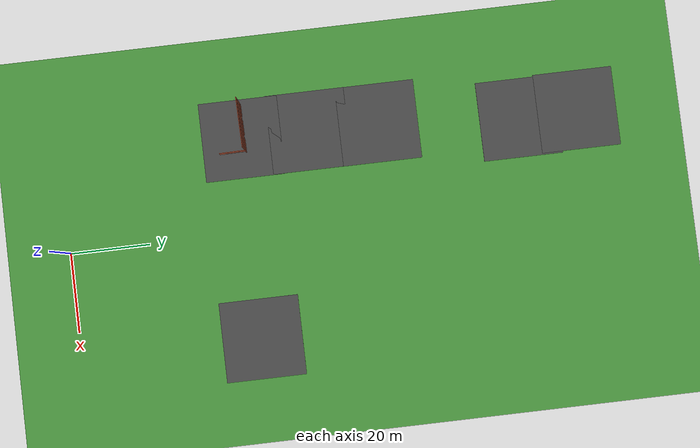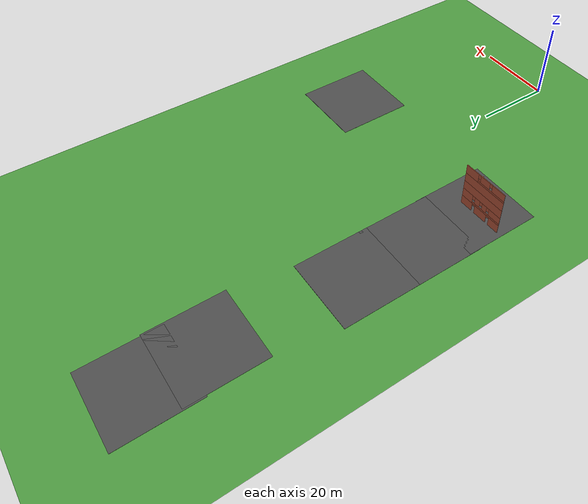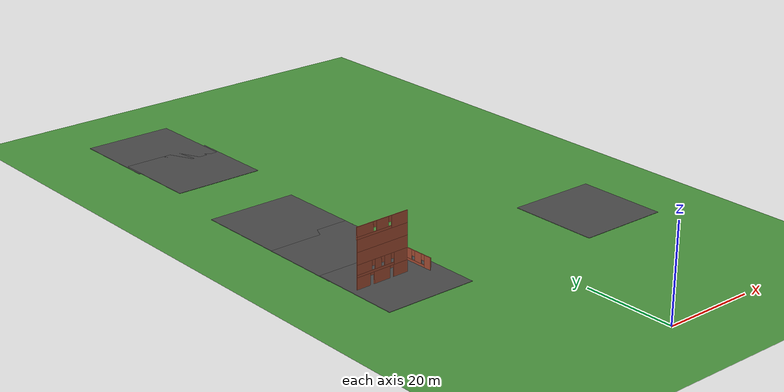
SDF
<sdf version="1.7">
 <world name="default">
  <model name="ground_plane">
   <static>1</static>
   <link name="link">
    <collision name="collision">
     <geometry><plane><normal>0 0 1</normal><size>100 100</size></plane></geometry>
     <surface>
      <contact><collide_bitmask>65535</collide_bitmask></contact>
      <friction><ode><mu>100</mu><mu2>50</mu2></ode></friction>
     </surface>
    </collision>
    <visual name="grass">
     <pose>0 0 -0.1 0 -0 0</pose>
     <cast_shadows>0</cast_shadows>
     <geometry><plane><normal>0 0 1</normal><size>1000 1000</size></plane></geometry>
     <material>
      <script><uri>file://media/materials/scripts/gazebo.material</uri><name>Gazebo/Grass</name></script>
     </material>
    </visual>
   </link>
  </model>
  <model name="asphalt_plane">
   <static>1</static>
   <link name="link">
    <collision name="collision"><geometry><box><size>20 20 0.1</size></box></geometry></collision>
    <visual name="visual">
     <cast_shadows>0</cast_shadows>
     <geometry><box><size>20 20 0.1</size></box></geometry>
     <material>
      <script>
       <uri>model://asphalt_plane/materials/scripts</uri>
       <uri>model://asphalt_plane/materials/textures</uri>
       <name>vrc/asphalt</name>
      </script>
     </material>
    </visual>
   </link>
   <pose>26.7323 45.4974 0 0 -0 0</pose>
  </model>
  <model name="asphalt_plane_6">
   <static>1</static>
   <link name="link">
    <collision name="collision"><geometry><box><size>20 20 0.1</size></box></geometry></collision>
    <visual name="visual">
     <cast_shadows>0</cast_shadows>
     <geometry><box><size>20 20 0.1</size></box></geometry>
     <material>
      <script>
       <uri>model://asphalt_plane/materials/scripts</uri>
       <uri>model://asphalt_plane/materials/textures</uri>
       <name>vrc/asphalt</name>
      </script>
     </material>
    </visual>
   </link>
   <pose>-23.8568 45.8423 0 0 -0 0</pose>
  </model>
  <model name="asphalt_plane_12">
   <static>1</static>
   <link name="link">
    <collision name="collision"><geometry><box><size>20 20 0.1</size></box></geometry></collision>
    <visual name="visual">
     <cast_shadows>0</cast_shadows>
     <geometry><box><size>20 20 0.1</size></box></geometry>
     <material>
      <script>
       <uri>model://asphalt_plane/materials/scripts</uri>
       <uri>model://asphalt_plane/materials/textures</uri>
       <name>vrc/asphalt</name>
      </script>
     </material>
    </visual>
   </link>
   <pose>-23.9532 62.876 0 0 -0 0</pose>
  </model>
  <model name="asphalt_plane_13">
   <static>1</static>
   <link name="link">
    <collision name="collision"><geometry><box><size>20 20 0.1</size></box></geometry></collision>
    <visual name="visual">
     <cast_shadows>0</cast_shadows>
     <geometry><box><size>20 20 0.1</size></box></geometry>
     <material>
      <script>
       <uri>model://asphalt_plane/materials/scripts</uri>
       <uri>model://asphalt_plane/materials/textures</uri>
       <name>vrc/asphalt</name>
      </script>
     </material>
    </visual>
   </link>
   <pose>-23.9271 80.6464 0 0 -0 0</pose>
  </model>
  <model name="asphalt_plane_20_clone_5">
   <static>1</static>
   <link name="link">
    <collision name="collision"><geometry><box><size>20 20 0.1</size></box></geometry></collision>
    <visual name="visual">
     <cast_shadows>0</cast_shadows>
     <geometry><box><size>20 20 0.1</size></box></geometry>
     <material>
      <script>
       <uri>model://asphalt_plane/materials/scripts</uri>
       <uri>model://asphalt_plane/materials/textures</uri>
       <name>vrc/asphalt</name>
      </script>
     </material>
    </visual>
   </link>
   <pose>-21.0183 116.161 0 0 -0 0</pose>
  </model>
  <model name="asphalt_plane_20_clone_6">
   <static>1</static>
   <link name="link">
    <collision name="collision"><geometry><box><size>20 20 0.1</size></box></geometry></collision>
    <visual name="visual">
     <cast_shadows>0</cast_shadows>
     <geometry><box><size>20 20 0.1</size></box></geometry>
     <material>
      <script>
       <uri>model://asphalt_plane/materials/scripts</uri>
       <uri>model://asphalt_plane/materials/textures</uri>
       <name>vrc/asphalt</name>
      </script>
     </material>
    </visual>
   </link>
   <pose>-21.4039 130.928 0 0 -0 0</pose>
  </model>
  <model name="my_building_1_clone_0">
   <link name="Wall_19">
    <pose>-0.950574 0 0 0 -0 1.5708</pose>
    <visual name="Wall_19_Visual_3">
     <pose>-2.20979 0 2.25 0 -0 0</pose>
     <geometry><box><size>0.9 0.15 0.5</size></box></geometry>
     <material>
      <script><uri>file://media/materials/scripts/gazebo.material</uri><name>Gazebo/Bricks</name></script>
      <ambient>1 1 1 1</ambient>
      <shader type="pixel"/>
     </material>
     <meta><layer>0</layer></meta>
    </visual>
    <visual name="Wall_19_Visual_2">
     <pose>4.53056 0 1.25 0 -0 0</pose>
     <geometry><box><size>3.18887 0.15 2.5</size></box></geometry>
     <material>
      <script><uri>file://media/materials/scripts/gazebo.material</uri><name>Gazebo/Bricks</name></script>
      <ambient>1 1 1 1</ambient>
      <shader type="pixel"/>
     </material>
     <meta><layer>0</layer></meta>
    </visual>
    <visual name="Wall_19_Visual_4">
     <pose>2.48613 0 2.25 0 -0 0</pose>
     <geometry><box><size>0.9 0.15 0.5</size></box></geometry>
     <material>
      <script><uri>file://media/materials/scripts/gazebo.material</uri><name>Gazebo/Bricks</name></script>
      <ambient>1 1 1 1</ambient>
      <shader type="pixel"/>
     </material>
     <meta><layer>0</layer></meta>
    </visual>
    <visual name="Wall_19_Visual_1">
     <pose>0.138171 0 1.25 0 -0 0</pose>
     <geometry><box><size>3.79591 0.15 2.5</size></box></geometry>
     <material>
      <script><uri>file://media/materials/scripts/gazebo.material</uri><name>Gazebo/Bricks</name></script>
      <ambient>1 1 1 1</ambient>
      <shader type="pixel"/>
     </material>
     <meta><layer>0</layer></meta>
    </visual>
    <visual name="Wall_19_Visual_0">
     <pose>-4.39239 0 1.25 0 -0 0</pose>
     <geometry><box><size>3.46522 0.15 2.5</size></box></geometry>
     <material>
      <script><uri>file://media/materials/scripts/gazebo.material</uri><name>Gazebo/Bricks</name></script>
      <ambient>1 1 1 1</ambient>
      <shader type="pixel"/>
     </material>
     <meta><layer>0</layer></meta>
    </visual>
    <collision name="Wall_19_Collision_0">
     <pose>-4.39239 0 1.25 0 -0 0</pose>
     <geometry><box><size>3.46522 0.15 2.5</size></box></geometry>
     <surface>
      <friction>
       <ode><mu>1</mu><mu2>1</mu2><fdir1>0 0 0</fdir1><slip1>0</slip1><slip2>0</slip2></ode>
       <torsional>
        <coefficient>1</coefficient>
        <patch_radius>0</patch_radius>
        <surface_radius>0</surface_radius>
        <use_patch_radius>1</use_patch_radius>
        <ode><slip>0</slip></ode>
       </torsional>
      </friction>
      <bounce><restitution_coefficient>0</restitution_coefficient><threshold>1e+06</threshold></bounce>
      <contact>
       <collide_without_contact>0</collide_without_contact>
       <collide_without_contact_bitmask>1</collide_without_contact_bitmask>
       <collide_bitmask>1</collide_bitmask>
       <ode>
        <soft_cfm>0</soft_cfm>
        <soft_erp>0.2</soft_erp>
        <kp>1e+13</kp>
        <kd>1</kd>
        <max_vel>0.01</max_vel>
        <min_depth>0</min_depth>
       </ode>
       <bullet>
        <split_impulse>1</split_impulse>
        <split_impulse_penetration_threshold>-0.01</split_impulse_penetration_threshold>
        <soft_cfm>0</soft_cfm>
        <soft_erp>0.2</soft_erp>
        <kp>1e+13</kp>
        <kd>1</kd>
       </bullet>
      </contact>
     </surface>
    </collision>
    <collision name="Wall_19_Collision_2">
     <pose>4.53056 0 1.25 0 -0 0</pose>
     <geometry><box><size>3.18887 0.15 2.5</size></box></geometry>
     <surface>
      <friction>
       <ode><mu>1</mu><mu2>1</mu2><fdir1>0 0 0</fdir1><slip1>0</slip1><slip2>0</slip2></ode>
       <torsional>
        <coefficient>1</coefficient>
        <patch_radius>0</patch_radius>
        <surface_radius>0</surface_radius>
        <use_patch_radius>1</use_patch_radius>
        <ode><slip>0</slip></ode>
       </torsional>
      </friction>
      <bounce><restitution_coefficient>0</restitution_coefficient><threshold>1e+06</threshold></bounce>
      <contact>
       <collide_without_contact>0</collide_without_contact>
       <collide_without_contact_bitmask>1</collide_without_contact_bitmask>
       <collide_bitmask>1</collide_bitmask>
       <ode>
        <soft_cfm>0</soft_cfm>
        <soft_erp>0.2</soft_erp>
        <kp>1e+13</kp>
        <kd>1</kd>
        <max_vel>0.01</max_vel>
        <min_depth>0</min_depth>
       </ode>
       <bullet>
        <split_impulse>1</split_impulse>
        <split_impulse_penetration_threshold>-0.01</split_impulse_penetration_threshold>
        <soft_cfm>0</soft_cfm>
        <soft_erp>0.2</soft_erp>
        <kp>1e+13</kp>
        <kd>1</kd>
       </bullet>
      </contact>
     </surface>
    </collision>
    <collision name="Wall_19_Collision_4">
     <pose>2.48613 0 2.25 0 -0 0</pose>
     <geometry><box><size>0.9 0.15 0.5</size></box></geometry>
     <surface>
      <friction>
       <ode><mu>1</mu><mu2>1</mu2><fdir1>0 0 0</fdir1><slip1>0</slip1><slip2>0</slip2></ode>
       <torsional>
        <coefficient>1</coefficient>
        <patch_radius>0</patch_radius>
        <surface_radius>0</surface_radius>
        <use_patch_radius>1</use_patch_radius>
        <ode><slip>0</slip></ode>
       </torsional>
      </friction>
      <bounce><restitution_coefficient>0</restitution_coefficient><threshold>1e+06</threshold></bounce>
      <contact>
       <collide_without_contact>0</collide_without_contact>
       <collide_without_contact_bitmask>1</collide_without_contact_bitmask>
       <collide_bitmask>1</collide_bitmask>
       <ode>
        <soft_cfm>0</soft_cfm>
        <soft_erp>0.2</soft_erp>
        <kp>1e+13</kp>
        <kd>1</kd>
        <max_vel>0.01</max_vel>
        <min_depth>0</min_depth>
       </ode>
       <bullet>
        <split_impulse>1</split_impulse>
        <split_impulse_penetration_threshold>-0.01</split_impulse_penetration_threshold>
        <soft_cfm>0</soft_cfm>
        <soft_erp>0.2</soft_erp>
        <kp>1e+13</kp>
        <kd>1</kd>
       </bullet>
      </contact>
     </surface>
    </collision>
    <collision name="Wall_19_Collision_3">
     <pose>-2.20979 0 2.25 0 -0 0</pose>
     <geometry><box><size>0.9 0.15 0.5</size></box></geometry>
     <surface>
      <friction>
       <ode><mu>1</mu><mu2>1</mu2><fdir1>0 0 0</fdir1><slip1>0</slip1><slip2>0</slip2></ode>
       <torsional>
        <coefficient>1</coefficient>
        <patch_radius>0</patch_radius>
        <surface_radius>0</surface_radius>
        <use_patch_radius>1</use_patch_radius>
        <ode><slip>0</slip></ode>
       </torsional>
      </friction>
      <bounce><restitution_coefficient>0</restitution_coefficient><threshold>1e+06</threshold></bounce>
      <contact>
       <collide_without_contact>0</collide_without_contact>
       <collide_without_contact_bitmask>1</collide_without_contact_bitmask>
       <collide_bitmask>1</collide_bitmask>
       <ode>
        <soft_cfm>0</soft_cfm>
        <soft_erp>0.2</soft_erp>
        <kp>1e+13</kp>
        <kd>1</kd>
        <max_vel>0.01</max_vel>
        <min_depth>0</min_depth>
       </ode>
       <bullet>
        <split_impulse>1</split_impulse>
        <split_impulse_penetration_threshold>-0.01</split_impulse_penetration_threshold>
        <soft_cfm>0</soft_cfm>
        <soft_erp>0.2</soft_erp>
        <kp>1e+13</kp>
        <kd>1</kd>
       </bullet>
      </contact>
     </surface>
    </collision>
    <collision name="Wall_19_Collision_1">
     <pose>0.138171 0 1.25 0 -0 0</pose>
     <geometry><box><size>3.79591 0.15 2.5</size></box></geometry>
     <surface>
      <friction>
       <ode><mu>1</mu><mu2>1</mu2><fdir1>0 0 0</fdir1><slip1>0</slip1><slip2>0</slip2></ode>
       <torsional>
        <coefficient>1</coefficient>
        <patch_radius>0</patch_radius>
        <surface_radius>0</surface_radius>
        <use_patch_radius>1</use_patch_radius>
        <ode><slip>0</slip></ode>
       </torsional>
      </friction>
      <bounce><restitution_coefficient>0</restitution_coefficient><threshold>1e+06</threshold></bounce>
      <contact>
       <collide_without_contact>0</collide_without_contact>
       <collide_without_contact_bitmask>1</collide_without_contact_bitmask>
       <collide_bitmask>1</collide_bitmask>
       <ode>
        <soft_cfm>0</soft_cfm>
        <soft_erp>0.2</soft_erp>
        <kp>1e+13</kp>
        <kd>1</kd>
        <max_vel>0.01</max_vel>
        <min_depth>0</min_depth>
       </ode>
       <bullet>
        <split_impulse>1</split_impulse>
        <split_impulse_penetration_threshold>-0.01</split_impulse_penetration_threshold>
        <soft_cfm>0</soft_cfm>
        <soft_erp>0.2</soft_erp>
        <kp>1e+13</kp>
        <kd>1</kd>
       </bullet>
      </contact>
     </surface>
    </collision>
   </link>
   <link name="Wall_75">
    <pose>-4.12557 -6.05 2.5 0 -0 0</pose>
    <visual name="Wall_75_Visual_2">
     <pose>0.117505 0 1.5 0 -0 0</pose>
     <geometry><box><size>1.83342 0.15 2</size></box></geometry>
     <material>
      <script><uri>file://media/materials/scripts/gazebo.material</uri><name>Gazebo/Bricks</name></script>
      <ambient>1 1 1 1</ambient>
      <shader type="pixel"/>
     </material>
     <meta><layer>1</layer></meta>
    </visual>
    <visual name="Wall_75_Visual_5">
     <pose>1.43422 0 1.9 0 -0 0</pose>
     <geometry><box><size>0.8 0.15 1.2</size></box></geometry>
     <material>
      <script><uri>file://media/materials/scripts/gazebo.material</uri><name>Gazebo/Bricks</name></script>
      <ambient>1 1 1 1</ambient>
      <shader type="pixel"/>
     </material>
     <meta><layer>1</layer></meta>
    </visual>
    <visual name="Wall_75_Visual_0">
     <pose>-2.4246 0 1.25 0 -0 0</pose>
     <geometry><box><size>1.6508 0.15 2.5</size></box></geometry>
     <material>
      <script><uri>file://media/materials/scripts/gazebo.material</uri><name>Gazebo/Bricks</name></script>
      <ambient>1 1 1 1</ambient>
      <shader type="pixel"/>
     </material>
     <meta><layer>1</layer></meta>
    </visual>
    <visual name="Wall_75_Visual_4">
     <pose>-1.19921 0 1.9 0 -0 0</pose>
     <geometry><box><size>0.8 0.15 1.2</size></box></geometry>
     <material>
      <script><uri>file://media/materials/scripts/gazebo.material</uri><name>Gazebo/Bricks</name></script>
      <ambient>1 1 1 1</ambient>
      <shader type="pixel"/>
     </material>
     <meta><layer>1</layer></meta>
    </visual>
    <visual name="Wall_75_Visual_3">
     <pose>2.54211 0 1.5 0 -0 0</pose>
     <geometry><box><size>1.41579 0.15 2</size></box></geometry>
     <material>
      <script><uri>file://media/materials/scripts/gazebo.material</uri><name>Gazebo/Bricks</name></script>
      <ambient>1 1 1 1</ambient>
      <shader type="pixel"/>
     </material>
     <meta><layer>1</layer></meta>
    </visual>
    <visual name="Wall_75_Visual_1">
     <pose>0.825397 0 0.25 0 -0 0</pose>
     <geometry><box><size>4.84921 0.15 0.5</size></box></geometry>
     <material>
      <script><uri>file://media/materials/scripts/gazebo.material</uri><name>Gazebo/Bricks</name></script>
      <ambient>1 1 1 1</ambient>
      <shader type="pixel"/>
     </material>
     <meta><layer>1</layer></meta>
    </visual>
    <collision name="Wall_75_Collision_0">
     <pose>-2.4246 0 1.25 0 -0 0</pose>
     <geometry><box><size>1.6508 0.15 2.5</size></box></geometry>
     <surface>
      <friction>
       <ode><mu>1</mu><mu2>1</mu2><fdir1>0 0 0</fdir1><slip1>0</slip1><slip2>0</slip2></ode>
       <torsional>
        <coefficient>1</coefficient>
        <patch_radius>0</patch_radius>
        <surface_radius>0</surface_radius>
        <use_patch_radius>1</use_patch_radius>
        <ode><slip>0</slip></ode>
       </torsional>
      </friction>
      <bounce><restitution_coefficient>0</restitution_coefficient><threshold>1e+06</threshold></bounce>
      <contact>
       <collide_without_contact>0</collide_without_contact>
       <collide_without_contact_bitmask>1</collide_without_contact_bitmask>
       <collide_bitmask>1</collide_bitmask>
       <ode>
        <soft_cfm>0</soft_cfm>
        <soft_erp>0.2</soft_erp>
        <kp>1e+13</kp>
        <kd>1</kd>
        <max_vel>0.01</max_vel>
        <min_depth>0</min_depth>
       </ode>
       <bullet>
        <split_impulse>1</split_impulse>
        <split_impulse_penetration_threshold>-0.01</split_impulse_penetration_threshold>
        <soft_cfm>0</soft_cfm>
        <soft_erp>0.2</soft_erp>
        <kp>1e+13</kp>
        <kd>1</kd>
       </bullet>
      </contact>
     </surface>
    </collision>
    <collision name="Wall_75_Collision_3">
     <pose>2.54211 0 1.5 0 -0 0</pose>
     <geometry><box><size>1.41579 0.15 2</size></box></geometry>
     <surface>
      <friction>
       <ode><mu>1</mu><mu2>1</mu2><fdir1>0 0 0</fdir1><slip1>0</slip1><slip2>0</slip2></ode>
       <torsional>
        <coefficient>1</coefficient>
        <patch_radius>0</patch_radius>
        <surface_radius>0</surface_radius>
        <use_patch_radius>1</use_patch_radius>
        <ode><slip>0</slip></ode>
       </torsional>
      </friction>
      <bounce><restitution_coefficient>0</restitution_coefficient><threshold>1e+06</threshold></bounce>
      <contact>
       <collide_without_contact>0</collide_without_contact>
       <collide_without_contact_bitmask>1</collide_without_contact_bitmask>
       <collide_bitmask>1</collide_bitmask>
       <ode>
        <soft_cfm>0</soft_cfm>
        <soft_erp>0.2</soft_erp>
        <kp>1e+13</kp>
        <kd>1</kd>
        <max_vel>0.01</max_vel>
        <min_depth>0</min_depth>
       </ode>
       <bullet>
        <split_impulse>1</split_impulse>
        <split_impulse_penetration_threshold>-0.01</split_impulse_penetration_threshold>
        <soft_cfm>0</soft_cfm>
        <soft_erp>0.2</soft_erp>
        <kp>1e+13</kp>
        <kd>1</kd>
       </bullet>
      </contact>
     </surface>
    </collision>
    <collision name="Wall_75_Collision_1">
     <pose>0.825397 0 0.25 0 -0 0</pose>
     <geometry><box><size>4.84921 0.15 0.5</size></box></geometry>
     <surface>
      <friction>
       <ode><mu>1</mu><mu2>1</mu2><fdir1>0 0 0</fdir1><slip1>0</slip1><slip2>0</slip2></ode>
       <torsional>
        <coefficient>1</coefficient>
        <patch_radius>0</patch_radius>
        <surface_radius>0</surface_radius>
        <use_patch_radius>1</use_patch_radius>
        <ode><slip>0</slip></ode>
       </torsional>
      </friction>
      <bounce><restitution_coefficient>0</restitution_coefficient><threshold>1e+06</threshold></bounce>
      <contact>
       <collide_without_contact>0</collide_without_contact>
       <collide_without_contact_bitmask>1</collide_without_contact_bitmask>
       <collide_bitmask>1</collide_bitmask>
       <ode>
        <soft_cfm>0</soft_cfm>
        <soft_erp>0.2</soft_erp>
        <kp>1e+13</kp>
        <kd>1</kd>
        <max_vel>0.01</max_vel>
        <min_depth>0</min_depth>
       </ode>
       <bullet>
        <split_impulse>1</split_impulse>
        <split_impulse_penetration_threshold>-0.01</split_impulse_penetration_threshold>
        <soft_cfm>0</soft_cfm>
        <soft_erp>0.2</soft_erp>
        <kp>1e+13</kp>
        <kd>1</kd>
       </bullet>
      </contact>
     </surface>
    </collision>
    <collision name="Wall_75_Collision_5">
     <pose>1.43422 0 1.9 0 -0 0</pose>
     <geometry><box><size>0.8 0.15 1.2</size></box></geometry>
     <surface>
      <friction>
       <ode><mu>1</mu><mu2>1</mu2><fdir1>0 0 0</fdir1><slip1>0</slip1><slip2>0</slip2></ode>
       <torsional>
        <coefficient>1</coefficient>
        <patch_radius>0</patch_radius>
        <surface_radius>0</surface_radius>
        <use_patch_radius>1</use_patch_radius>
        <ode><slip>0</slip></ode>
       </torsional>
      </friction>
      <bounce><restitution_coefficient>0</restitution_coefficient><threshold>1e+06</threshold></bounce>
      <contact>
       <collide_without_contact>0</collide_without_contact>
       <collide_without_contact_bitmask>1</collide_without_contact_bitmask>
       <collide_bitmask>1</collide_bitmask>
       <ode>
        <soft_cfm>0</soft_cfm>
        <soft_erp>0.2</soft_erp>
        <kp>1e+13</kp>
        <kd>1</kd>
        <max_vel>0.01</max_vel>
        <min_depth>0</min_depth>
       </ode>
       <bullet>
        <split_impulse>1</split_impulse>
        <split_impulse_penetration_threshold>-0.01</split_impulse_penetration_threshold>
        <soft_cfm>0</soft_cfm>
        <soft_erp>0.2</soft_erp>
        <kp>1e+13</kp>
        <kd>1</kd>
       </bullet>
      </contact>
     </surface>
    </collision>
    <collision name="Wall_75_Collision_2">
     <pose>0.117505 0 1.5 0 -0 0</pose>
     <geometry><box><size>1.83342 0.15 2</size></box></geometry>
     <surface>
      <friction>
       <ode><mu>1</mu><mu2>1</mu2><fdir1>0 0 0</fdir1><slip1>0</slip1><slip2>0</slip2></ode>
       <torsional>
        <coefficient>1</coefficient>
        <patch_radius>0</patch_radius>
        <surface_radius>0</surface_radius>
        <use_patch_radius>1</use_patch_radius>
        <ode><slip>0</slip></ode>
       </torsional>
      </friction>
      <bounce><restitution_coefficient>0</restitution_coefficient><threshold>1e+06</threshold></bounce>
      <contact>
       <collide_without_contact>0</collide_without_contact>
       <collide_without_contact_bitmask>1</collide_without_contact_bitmask>
       <collide_bitmask>1</collide_bitmask>
       <ode>
        <soft_cfm>0</soft_cfm>
        <soft_erp>0.2</soft_erp>
        <kp>1e+13</kp>
        <kd>1</kd>
        <max_vel>0.01</max_vel>
        <min_depth>0</min_depth>
       </ode>
       <bullet>
        <split_impulse>1</split_impulse>
        <split_impulse_penetration_threshold>-0.01</split_impulse_penetration_threshold>
        <soft_cfm>0</soft_cfm>
        <soft_erp>0.2</soft_erp>
        <kp>1e+13</kp>
        <kd>1</kd>
       </bullet>
      </contact>
     </surface>
    </collision>
    <collision name="Wall_75_Collision_4">
     <pose>-1.19921 0 1.9 0 -0 0</pose>
     <geometry><box><size>0.8 0.15 1.2</size></box></geometry>
     <surface>
      <friction>
       <ode><mu>1</mu><mu2>1</mu2><fdir1>0 0 0</fdir1><slip1>0</slip1><slip2>0</slip2></ode>
       <torsional>
        <coefficient>1</coefficient>
        <patch_radius>0</patch_radius>
        <surface_radius>0</surface_radius>
        <use_patch_radius>1</use_patch_radius>
        <ode><slip>0</slip></ode>
       </torsional>
      </friction>
      <bounce><restitution_coefficient>0</restitution_coefficient><threshold>1e+06</threshold></bounce>
      <contact>
       <collide_without_contact>0</collide_without_contact>
       <collide_without_contact_bitmask>1</collide_without_contact_bitmask>
       <collide_bitmask>1</collide_bitmask>
       <ode>
        <soft_cfm>0</soft_cfm>
        <soft_erp>0.2</soft_erp>
        <kp>1e+13</kp>
        <kd>1</kd>
        <max_vel>0.01</max_vel>
        <min_depth>0</min_depth>
       </ode>
       <bullet>
        <split_impulse>1</split_impulse>
        <split_impulse_penetration_threshold>-0.01</split_impulse_penetration_threshold>
        <soft_cfm>0</soft_cfm>
        <soft_erp>0.2</soft_erp>
        <kp>1e+13</kp>
        <kd>1</kd>
       </bullet>
      </contact>
     </surface>
    </collision>
   </link>
   <link name="Wall_76">
    <pose>-0.950574 0 2.5 0 -0 1.5708</pose>
    <visual name="Wall_76_Visual_4">
     <pose>4.35586 0 1.5 0 -0 0</pose>
     <geometry><box><size>3.53828 0.15 2</size></box></geometry>
     <material>
      <script><uri>file://media/materials/scripts/gazebo.material</uri><name>Gazebo/Bricks</name></script>
      <ambient>1 1 1 1</ambient>
      <shader type="pixel"/>
     </material>
     <meta><layer>1</layer></meta>
    </visual>
    <visual name="Wall_76_Visual_7">
     <pose>2.18672 0 1.9 0 -0 0</pose>
     <geometry><box><size>0.8 0.15 1.2</size></box></geometry>
     <material>
      <script><uri>file://media/materials/scripts/gazebo.material</uri><name>Gazebo/Bricks</name></script>
      <ambient>1 1 1 1</ambient>
      <shader type="pixel"/>
     </material>
     <meta><layer>1</layer></meta>
    </visual>
    <visual name="Wall_76_Visual_5">
     <pose>-2.44171 0 1.9 0 -0 0</pose>
     <geometry><box><size>0.8 0.15 1.2</size></box></geometry>
     <material>
      <script><uri>file://media/materials/scripts/gazebo.material</uri><name>Gazebo/Bricks</name></script>
      <ambient>1 1 1 1</ambient>
      <shader type="pixel"/>
     </material>
     <meta><layer>1</layer></meta>
    </visual>
    <visual name="Wall_76_Visual_6">
     <pose>-0.074293 0 1.9 0 -0 0</pose>
     <geometry><box><size>0.8 0.15 1.2</size></box></geometry>
     <material>
      <script><uri>file://media/materials/scripts/gazebo.material</uri><name>Gazebo/Bricks</name></script>
      <ambient>1 1 1 1</ambient>
      <shader type="pixel"/>
     </material>
     <meta><layer>1</layer></meta>
    </visual>
    <visual name="Wall_76_Visual_0">
     <pose>-4.48336 0 1.25 0 -0 0</pose>
     <geometry><box><size>3.28329 0.15 2.5</size></box></geometry>
     <material>
      <script><uri>file://media/materials/scripts/gazebo.material</uri><name>Gazebo/Bricks</name></script>
      <ambient>1 1 1 1</ambient>
      <shader type="pixel"/>
     </material>
     <meta><layer>1</layer></meta>
    </visual>
    <visual name="Wall_76_Visual_3">
     <pose>1.05621 0 1.5 0 -0 0</pose>
     <geometry><box><size>1.46102 0.15 2</size></box></geometry>
     <material>
      <script><uri>file://media/materials/scripts/gazebo.material</uri><name>Gazebo/Bricks</name></script>
      <ambient>1 1 1 1</ambient>
      <shader type="pixel"/>
     </material>
     <meta><layer>1</layer></meta>
    </visual>
    <visual name="Wall_76_Visual_1">
     <pose>1.64164 0 0.25 0 -0 0</pose>
     <geometry><box><size>8.96671 0.15 0.5</size></box></geometry>
     <material>
      <script><uri>file://media/materials/scripts/gazebo.material</uri><name>Gazebo/Bricks</name></script>
      <ambient>1 1 1 1</ambient>
      <shader type="pixel"/>
     </material>
     <meta><layer>1</layer></meta>
    </visual>
    <visual name="Wall_76_Visual_2">
     <pose>-1.258 0 1.5 0 -0 0</pose>
     <geometry><box><size>1.56742 0.15 2</size></box></geometry>
     <material>
      <script><uri>file://media/materials/scripts/gazebo.material</uri><name>Gazebo/Bricks</name></script>
      <ambient>1 1 1 1</ambient>
      <shader type="pixel"/>
     </material>
     <meta><layer>1</layer></meta>
    </visual>
    <collision name="Wall_76_Collision_3">
     <pose>1.05621 0 1.5 0 -0 0</pose>
     <geometry><box><size>1.46102 0.15 2</size></box></geometry>
     <surface>
      <friction>
       <ode><mu>1</mu><mu2>1</mu2><fdir1>0 0 0</fdir1><slip1>0</slip1><slip2>0</slip2></ode>
       <torsional>
        <coefficient>1</coefficient>
        <patch_radius>0</patch_radius>
        <surface_radius>0</surface_radius>
        <use_patch_radius>1</use_patch_radius>
        <ode><slip>0</slip></ode>
       </torsional>
      </friction>
      <bounce><restitution_coefficient>0</restitution_coefficient><threshold>1e+06</threshold></bounce>
      <contact>
       <collide_without_contact>0</collide_without_contact>
       <collide_without_contact_bitmask>1</collide_without_contact_bitmask>
       <collide_bitmask>1</collide_bitmask>
       <ode>
        <soft_cfm>0</soft_cfm>
        <soft_erp>0.2</soft_erp>
        <kp>1e+13</kp>
        <kd>1</kd>
        <max_vel>0.01</max_vel>
        <min_depth>0</min_depth>
       </ode>
       <bullet>
        <split_impulse>1</split_impulse>
        <split_impulse_penetration_threshold>-0.01</split_impulse_penetration_threshold>
        <soft_cfm>0</soft_cfm>
        <soft_erp>0.2</soft_erp>
        <kp>1e+13</kp>
        <kd>1</kd>
       </bullet>
      </contact>
     </surface>
    </collision>
    <collision name="Wall_76_Collision_1">
     <pose>1.64164 0 0.25 0 -0 0</pose>
     <geometry><box><size>8.96671 0.15 0.5</size></box></geometry>
     <surface>
      <friction>
       <ode><mu>1</mu><mu2>1</mu2><fdir1>0 0 0</fdir1><slip1>0</slip1><slip2>0</slip2></ode>
       <torsional>
        <coefficient>1</coefficient>
        <patch_radius>0</patch_radius>
        <surface_radius>0</surface_radius>
        <use_patch_radius>1</use_patch_radius>
        <ode><slip>0</slip></ode>
       </torsional>
      </friction>
      <bounce><restitution_coefficient>0</restitution_coefficient><threshold>1e+06</threshold></bounce>
      <contact>
       <collide_without_contact>0</collide_without_contact>
       <collide_without_contact_bitmask>1</collide_without_contact_bitmask>
       <collide_bitmask>1</collide_bitmask>
       <ode>
        <soft_cfm>0</soft_cfm>
        <soft_erp>0.2</soft_erp>
        <kp>1e+13</kp>
        <kd>1</kd>
        <max_vel>0.01</max_vel>
        <min_depth>0</min_depth>
       </ode>
       <bullet>
        <split_impulse>1</split_impulse>
        <split_impulse_penetration_threshold>-0.01</split_impulse_penetration_threshold>
        <soft_cfm>0</soft_cfm>
        <soft_erp>0.2</soft_erp>
        <kp>1e+13</kp>
        <kd>1</kd>
       </bullet>
      </contact>
     </surface>
    </collision>
    <collision name="Wall_76_Collision_6">
     <pose>-0.074293 0 1.9 0 -0 0</pose>
     <geometry><box><size>0.8 0.15 1.2</size></box></geometry>
     <surface>
      <friction>
       <ode><mu>1</mu><mu2>1</mu2><fdir1>0 0 0</fdir1><slip1>0</slip1><slip2>0</slip2></ode>
       <torsional>
        <coefficient>1</coefficient>
        <patch_radius>0</patch_radius>
        <surface_radius>0</surface_radius>
        <use_patch_radius>1</use_patch_radius>
        <ode><slip>0</slip></ode>
       </torsional>
      </friction>
      <bounce><restitution_coefficient>0</restitution_coefficient><threshold>1e+06</threshold></bounce>
      <contact>
       <collide_without_contact>0</collide_without_contact>
       <collide_without_contact_bitmask>1</collide_without_contact_bitmask>
       <collide_bitmask>1</collide_bitmask>
       <ode>
        <soft_cfm>0</soft_cfm>
        <soft_erp>0.2</soft_erp>
        <kp>1e+13</kp>
        <kd>1</kd>
        <max_vel>0.01</max_vel>
        <min_depth>0</min_depth>
       </ode>
       <bullet>
        <split_impulse>1</split_impulse>
        <split_impulse_penetration_threshold>-0.01</split_impulse_penetration_threshold>
        <soft_cfm>0</soft_cfm>
        <soft_erp>0.2</soft_erp>
        <kp>1e+13</kp>
        <kd>1</kd>
       </bullet>
      </contact>
     </surface>
    </collision>
    <collision name="Wall_76_Collision_5">
     <pose>-2.44171 0 1.9 0 -0 0</pose>
     <geometry><box><size>0.8 0.15 1.2</size></box></geometry>
     <surface>
      <friction>
       <ode><mu>1</mu><mu2>1</mu2><fdir1>0 0 0</fdir1><slip1>0</slip1><slip2>0</slip2></ode>
       <torsional>
        <coefficient>1</coefficient>
        <patch_radius>0</patch_radius>
        <surface_radius>0</surface_radius>
        <use_patch_radius>1</use_patch_radius>
        <ode><slip>0</slip></ode>
       </torsional>
      </friction>
      <bounce><restitution_coefficient>0</restitution_coefficient><threshold>1e+06</threshold></bounce>
      <contact>
       <collide_without_contact>0</collide_without_contact>
       <collide_without_contact_bitmask>1</collide_without_contact_bitmask>
       <collide_bitmask>1</collide_bitmask>
       <ode>
        <soft_cfm>0</soft_cfm>
        <soft_erp>0.2</soft_erp>
        <kp>1e+13</kp>
        <kd>1</kd>
        <max_vel>0.01</max_vel>
        <min_depth>0</min_depth>
       </ode>
       <bullet>
        <split_impulse>1</split_impulse>
        <split_impulse_penetration_threshold>-0.01</split_impulse_penetration_threshold>
        <soft_cfm>0</soft_cfm>
        <soft_erp>0.2</soft_erp>
        <kp>1e+13</kp>
        <kd>1</kd>
       </bullet>
      </contact>
     </surface>
    </collision>
    <collision name="Wall_76_Collision_0">
     <pose>-4.48336 0 1.25 0 -0 0</pose>
     <geometry><box><size>3.28329 0.15 2.5</size></box></geometry>
     <surface>
      <friction>
       <ode><mu>1</mu><mu2>1</mu2><fdir1>0 0 0</fdir1><slip1>0</slip1><slip2>0</slip2></ode>
       <torsional>
        <coefficient>1</coefficient>
        <patch_radius>0</patch_radius>
        <surface_radius>0</surface_radius>
        <use_patch_radius>1</use_patch_radius>
        <ode><slip>0</slip></ode>
       </torsional>
      </friction>
      <bounce><restitution_coefficient>0</restitution_coefficient><threshold>1e+06</threshold></bounce>
      <contact>
       <collide_without_contact>0</collide_without_contact>
       <collide_without_contact_bitmask>1</collide_without_contact_bitmask>
       <collide_bitmask>1</collide_bitmask>
       <ode>
        <soft_cfm>0</soft_cfm>
        <soft_erp>0.2</soft_erp>
        <kp>1e+13</kp>
        <kd>1</kd>
        <max_vel>0.01</max_vel>
        <min_depth>0</min_depth>
       </ode>
       <bullet>
        <split_impulse>1</split_impulse>
        <split_impulse_penetration_threshold>-0.01</split_impulse_penetration_threshold>
        <soft_cfm>0</soft_cfm>
        <soft_erp>0.2</soft_erp>
        <kp>1e+13</kp>
        <kd>1</kd>
       </bullet>
      </contact>
     </surface>
    </collision>
    <collision name="Wall_76_Collision_2">
     <pose>-1.258 0 1.5 0 -0 0</pose>
     <geometry><box><size>1.56742 0.15 2</size></box></geometry>
     <surface>
      <friction>
       <ode><mu>1</mu><mu2>1</mu2><fdir1>0 0 0</fdir1><slip1>0</slip1><slip2>0</slip2></ode>
       <torsional>
        <coefficient>1</coefficient>
        <patch_radius>0</patch_radius>
        <surface_radius>0</surface_radius>
        <use_patch_radius>1</use_patch_radius>
        <ode><slip>0</slip></ode>
       </torsional>
      </friction>
      <bounce><restitution_coefficient>0</restitution_coefficient><threshold>1e+06</threshold></bounce>
      <contact>
       <collide_without_contact>0</collide_without_contact>
       <collide_without_contact_bitmask>1</collide_without_contact_bitmask>
       <collide_bitmask>1</collide_bitmask>
       <ode>
        <soft_cfm>0</soft_cfm>
        <soft_erp>0.2</soft_erp>
        <kp>1e+13</kp>
        <kd>1</kd>
        <max_vel>0.01</max_vel>
        <min_depth>0</min_depth>
       </ode>
       <bullet>
        <split_impulse>1</split_impulse>
        <split_impulse_penetration_threshold>-0.01</split_impulse_penetration_threshold>
        <soft_cfm>0</soft_cfm>
        <soft_erp>0.2</soft_erp>
        <kp>1e+13</kp>
        <kd>1</kd>
       </bullet>
      </contact>
     </surface>
    </collision>
    <collision name="Wall_76_Collision_7">
     <pose>2.18672 0 1.9 0 -0 0</pose>
     <geometry><box><size>0.8 0.15 1.2</size></box></geometry>
     <surface>
      <friction>
       <ode><mu>1</mu><mu2>1</mu2><fdir1>0 0 0</fdir1><slip1>0</slip1><slip2>0</slip2></ode>
       <torsional>
        <coefficient>1</coefficient>
        <patch_radius>0</patch_radius>
        <surface_radius>0</surface_radius>
        <use_patch_radius>1</use_patch_radius>
        <ode><slip>0</slip></ode>
       </torsional>
      </friction>
      <bounce><restitution_coefficient>0</restitution_coefficient><threshold>1e+06</threshold></bounce>
      <contact>
       <collide_without_contact>0</collide_without_contact>
       <collide_without_contact_bitmask>1</collide_without_contact_bitmask>
       <collide_bitmask>1</collide_bitmask>
       <ode>
        <soft_cfm>0</soft_cfm>
        <soft_erp>0.2</soft_erp>
        <kp>1e+13</kp>
        <kd>1</kd>
        <max_vel>0.01</max_vel>
        <min_depth>0</min_depth>
       </ode>
       <bullet>
        <split_impulse>1</split_impulse>
        <split_impulse_penetration_threshold>-0.01</split_impulse_penetration_threshold>
        <soft_cfm>0</soft_cfm>
        <soft_erp>0.2</soft_erp>
        <kp>1e+13</kp>
        <kd>1</kd>
       </bullet>
      </contact>
     </surface>
    </collision>
    <collision name="Wall_76_Collision_4">
     <pose>4.35586 0 1.5 0 -0 0</pose>
     <geometry><box><size>3.53828 0.15 2</size></box></geometry>
     <surface>
      <friction>
       <ode><mu>1</mu><mu2>1</mu2><fdir1>0 0 0</fdir1><slip1>0</slip1><slip2>0</slip2></ode>
       <torsional>
        <coefficient>1</coefficient>
        <patch_radius>0</patch_radius>
        <surface_radius>0</surface_radius>
        <use_patch_radius>1</use_patch_radius>
        <ode><slip>0</slip></ode>
       </torsional>
      </friction>
      <bounce><restitution_coefficient>0</restitution_coefficient><threshold>1e+06</threshold></bounce>
      <contact>
       <collide_without_contact>0</collide_without_contact>
       <collide_without_contact_bitmask>1</collide_without_contact_bitmask>
       <collide_bitmask>1</collide_bitmask>
       <ode>
        <soft_cfm>0</soft_cfm>
        <soft_erp>0.2</soft_erp>
        <kp>1e+13</kp>
        <kd>1</kd>
        <max_vel>0.01</max_vel>
        <min_depth>0</min_depth>
       </ode>
       <bullet>
        <split_impulse>1</split_impulse>
        <split_impulse_penetration_threshold>-0.01</split_impulse_penetration_threshold>
        <soft_cfm>0</soft_cfm>
        <soft_erp>0.2</soft_erp>
        <kp>1e+13</kp>
        <kd>1</kd>
       </bullet>
      </contact>
     </surface>
    </collision>
   </link>
   <link name="Wall_80">
    <pose>-0.950574 0 5 0 -0 1.5708</pose>
    <visual name="Wall_80_Visual">
     <pose>0 0 1.25 0 -0 0</pose>
     <geometry><box><size>12.25 0.15 2.5</size></box></geometry>
     <material>
      <script><uri>file://media/materials/scripts/gazebo.material</uri><name>Gazebo/Bricks</name></script>
      <ambient>1 1 1 1</ambient>
      <shader type="pixel"/>
     </material>
     <meta><layer>2</layer></meta>
    </visual>
    <collision name="Wall_80_Collision">
     <pose>0 0 1.25 0 -0 0</pose>
     <geometry><box><size>12.25 0.15 2.5</size></box></geometry>
     <surface>
      <friction>
       <ode><mu>1</mu><mu2>1</mu2><fdir1>0 0 0</fdir1><slip1>0</slip1><slip2>0</slip2></ode>
       <torsional>
        <coefficient>1</coefficient>
        <patch_radius>0</patch_radius>
        <surface_radius>0</surface_radius>
        <use_patch_radius>1</use_patch_radius>
        <ode><slip>0</slip></ode>
       </torsional>
      </friction>
      <bounce><restitution_coefficient>0</restitution_coefficient><threshold>1e+06</threshold></bounce>
      <contact>
       <collide_without_contact>0</collide_without_contact>
       <collide_without_contact_bitmask>1</collide_without_contact_bitmask>
       <collide_bitmask>1</collide_bitmask>
       <ode>
        <soft_cfm>0</soft_cfm>
        <soft_erp>0.2</soft_erp>
        <kp>1e+13</kp>
        <kd>1</kd>
        <max_vel>0.01</max_vel>
        <min_depth>0</min_depth>
       </ode>
       <bullet>
        <split_impulse>1</split_impulse>
        <split_impulse_penetration_threshold>-0.01</split_impulse_penetration_threshold>
        <soft_cfm>0</soft_cfm>
        <soft_erp>0.2</soft_erp>
        <kp>1e+13</kp>
        <kd>1</kd>
       </bullet>
      </contact>
     </surface>
    </collision>
   </link>
   <link name="Wall_84">
    <pose>-0.950574 0 7.5 0 -0 1.5708</pose>
    <visual name="Wall_84_Visual">
     <pose>0 0 1.25 0 -0 0</pose>
     <geometry><box><size>12.25 0.15 2.5</size></box></geometry>
     <material>
      <script><uri>file://media/materials/scripts/gazebo.material</uri><name>Gazebo/Bricks</name></script>
      <ambient>1 1 1 1</ambient>
      <shader type="pixel"/>
     </material>
     <meta><layer>3</layer></meta>
    </visual>
    <collision name="Wall_84_Collision">
     <pose>0 0 1.25 0 -0 0</pose>
     <geometry><box><size>12.25 0.15 2.5</size></box></geometry>
     <surface>
      <friction>
       <ode><mu>1</mu><mu2>1</mu2><fdir1>0 0 0</fdir1><slip1>0</slip1><slip2>0</slip2></ode>
       <torsional>
        <coefficient>1</coefficient>
        <patch_radius>0</patch_radius>
        <surface_radius>0</surface_radius>
        <use_patch_radius>1</use_patch_radius>
        <ode><slip>0</slip></ode>
       </torsional>
      </friction>
      <bounce><restitution_coefficient>0</restitution_coefficient><threshold>1e+06</threshold></bounce>
      <contact>
       <collide_without_contact>0</collide_without_contact>
       <collide_without_contact_bitmask>1</collide_without_contact_bitmask>
       <collide_bitmask>1</collide_bitmask>
       <ode>
        <soft_cfm>0</soft_cfm>
        <soft_erp>0.2</soft_erp>
        <kp>1e+13</kp>
        <kd>1</kd>
        <max_vel>0.01</max_vel>
        <min_depth>0</min_depth>
       </ode>
       <bullet>
        <split_impulse>1</split_impulse>
        <split_impulse_penetration_threshold>-0.01</split_impulse_penetration_threshold>
        <soft_cfm>0</soft_cfm>
        <soft_erp>0.2</soft_erp>
        <kp>1e+13</kp>
        <kd>1</kd>
       </bullet>
      </contact>
     </surface>
    </collision>
   </link>
   <link name="Wall_88">
    <pose>-0.950574 0 10 0 -0 1.5708</pose>
    <visual name="Wall_88_Visual_1">
     <pose>1.94755 0 0.25 0 -0 0</pose>
     <geometry><box><size>8.35491 0.15 0.5</size></box></geometry>
     <material>
      <script><uri>file://media/materials/scripts/gazebo.material</uri><name>Gazebo/Bricks</name></script>
      <ambient>1 1 1 1</ambient>
      <shader type="pixel"/>
     </material>
     <meta><layer>4</layer></meta>
    </visual>
    <visual name="Wall_88_Visual_2">
     <pose>-0.007793 0 1.5 0 -0 0</pose>
     <geometry><box><size>2.84423 0.15 2</size></box></geometry>
     <material>
      <script><uri>file://media/materials/scripts/gazebo.material</uri><name>Gazebo/Bricks</name></script>
      <ambient>1 1 1 1</ambient>
      <shader type="pixel"/>
     </material>
     <meta><layer>4</layer></meta>
    </visual>
    <visual name="Wall_88_Visual_4">
     <pose>-1.82991 0 1.9 0 -0 0</pose>
     <geometry><box><size>0.8 0.15 1.2</size></box></geometry>
     <material>
      <script><uri>file://media/materials/scripts/gazebo.material</uri><name>Gazebo/Bricks</name></script>
      <ambient>1 1 1 1</ambient>
      <shader type="pixel"/>
     </material>
     <meta><layer>4</layer></meta>
    </visual>
    <visual name="Wall_88_Visual_5">
     <pose>1.81432 0 1.9 0 -0 0</pose>
     <geometry><box><size>0.8 0.15 1.2</size></box></geometry>
     <material>
      <script><uri>file://media/materials/scripts/gazebo.material</uri><name>Gazebo/Bricks</name></script>
      <ambient>1 1 1 1</ambient>
      <shader type="pixel"/>
     </material>
     <meta><layer>4</layer></meta>
    </visual>
    <visual name="Wall_88_Visual_3">
     <pose>4.16966 0 1.5 0 -0 0</pose>
     <geometry><box><size>3.91068 0.15 2</size></box></geometry>
     <material>
      <script><uri>file://media/materials/scripts/gazebo.material</uri><name>Gazebo/Bricks</name></script>
      <ambient>1 1 1 1</ambient>
      <shader type="pixel"/>
     </material>
     <meta><layer>4</layer></meta>
    </visual>
    <visual name="Wall_88_Visual_0">
     <pose>-4.17745 0 1.25 0 -0 0</pose>
     <geometry><box><size>3.89509 0.15 2.5</size></box></geometry>
     <material>
      <script><uri>file://media/materials/scripts/gazebo.material</uri><name>Gazebo/Bricks</name></script>
      <ambient>1 1 1 1</ambient>
      <shader type="pixel"/>
     </material>
     <meta><layer>4</layer></meta>
    </visual>
    <collision name="Wall_88_Collision_4">
     <pose>-1.82991 0 1.9 0 -0 0</pose>
     <geometry><box><size>0.8 0.15 1.2</size></box></geometry>
     <surface>
      <friction>
       <ode><mu>1</mu><mu2>1</mu2><fdir1>0 0 0</fdir1><slip1>0</slip1><slip2>0</slip2></ode>
       <torsional>
        <coefficient>1</coefficient>
        <patch_radius>0</patch_radius>
        <surface_radius>0</surface_radius>
        <use_patch_radius>1</use_patch_radius>
        <ode><slip>0</slip></ode>
       </torsional>
      </friction>
      <bounce><restitution_coefficient>0</restitution_coefficient><threshold>1e+06</threshold></bounce>
      <contact>
       <collide_without_contact>0</collide_without_contact>
       <collide_without_contact_bitmask>1</collide_without_contact_bitmask>
       <collide_bitmask>1</collide_bitmask>
       <ode>
        <soft_cfm>0</soft_cfm>
        <soft_erp>0.2</soft_erp>
        <kp>1e+13</kp>
        <kd>1</kd>
        <max_vel>0.01</max_vel>
        <min_depth>0</min_depth>
       </ode>
       <bullet>
        <split_impulse>1</split_impulse>
        <split_impulse_penetration_threshold>-0.01</split_impulse_penetration_threshold>
        <soft_cfm>0</soft_cfm>
        <soft_erp>0.2</soft_erp>
        <kp>1e+13</kp>
        <kd>1</kd>
       </bullet>
      </contact>
     </surface>
    </collision>
    <collision name="Wall_88_Collision_5">
     <pose>1.81432 0 1.9 0 -0 0</pose>
     <geometry><box><size>0.8 0.15 1.2</size></box></geometry>
     <surface>
      <friction>
       <ode><mu>1</mu><mu2>1</mu2><fdir1>0 0 0</fdir1><slip1>0</slip1><slip2>0</slip2></ode>
       <torsional>
        <coefficient>1</coefficient>
        <patch_radius>0</patch_radius>
        <surface_radius>0</surface_radius>
        <use_patch_radius>1</use_patch_radius>
        <ode><slip>0</slip></ode>
       </torsional>
      </friction>
      <bounce><restitution_coefficient>0</restitution_coefficient><threshold>1e+06</threshold></bounce>
      <contact>
       <collide_without_contact>0</collide_without_contact>
       <collide_without_contact_bitmask>1</collide_without_contact_bitmask>
       <collide_bitmask>1</collide_bitmask>
       <ode>
        <soft_cfm>0</soft_cfm>
        <soft_erp>0.2</soft_erp>
        <kp>1e+13</kp>
        <kd>1</kd>
        <max_vel>0.01</max_vel>
        <min_depth>0</min_depth>
       </ode>
       <bullet>
        <split_impulse>1</split_impulse>
        <split_impulse_penetration_threshold>-0.01</split_impulse_penetration_threshold>
        <soft_cfm>0</soft_cfm>
        <soft_erp>0.2</soft_erp>
        <kp>1e+13</kp>
        <kd>1</kd>
       </bullet>
      </contact>
     </surface>
    </collision>
    <collision name="Wall_88_Collision_2">
     <pose>-0.007793 0 1.5 0 -0 0</pose>
     <geometry><box><size>2.84423 0.15 2</size></box></geometry>
     <surface>
      <friction>
       <ode><mu>1</mu><mu2>1</mu2><fdir1>0 0 0</fdir1><slip1>0</slip1><slip2>0</slip2></ode>
       <torsional>
        <coefficient>1</coefficient>
        <patch_radius>0</patch_radius>
        <surface_radius>0</surface_radius>
        <use_patch_radius>1</use_patch_radius>
        <ode><slip>0</slip></ode>
       </torsional>
      </friction>
      <bounce><restitution_coefficient>0</restitution_coefficient><threshold>1e+06</threshold></bounce>
      <contact>
       <collide_without_contact>0</collide_without_contact>
       <collide_without_contact_bitmask>1</collide_without_contact_bitmask>
       <collide_bitmask>1</collide_bitmask>
       <ode>
        <soft_cfm>0</soft_cfm>
        <soft_erp>0.2</soft_erp>
        <kp>1e+13</kp>
        <kd>1</kd>
        <max_vel>0.01</max_vel>
        <min_depth>0</min_depth>
       </ode>
       <bullet>
        <split_impulse>1</split_impulse>
        <split_impulse_penetration_threshold>-0.01</split_impulse_penetration_threshold>
        <soft_cfm>0</soft_cfm>
        <soft_erp>0.2</soft_erp>
        <kp>1e+13</kp>
        <kd>1</kd>
       </bullet>
      </contact>
     </surface>
    </collision>
    <collision name="Wall_88_Collision_0">
     <pose>-4.17745 0 1.25 0 -0 0</pose>
     <geometry><box><size>3.89509 0.15 2.5</size></box></geometry>
     <surface>
      <friction>
       <ode><mu>1</mu><mu2>1</mu2><fdir1>0 0 0</fdir1><slip1>0</slip1><slip2>0</slip2></ode>
       <torsional>
        <coefficient>1</coefficient>
        <patch_radius>0</patch_radius>
        <surface_radius>0</surface_radius>
        <use_patch_radius>1</use_patch_radius>
        <ode><slip>0</slip></ode>
       </torsional>
      </friction>
      <bounce><restitution_coefficient>0</restitution_coefficient><threshold>1e+06</threshold></bounce>
      <contact>
       <collide_without_contact>0</collide_without_contact>
       <collide_without_contact_bitmask>1</collide_without_contact_bitmask>
       <collide_bitmask>1</collide_bitmask>
       <ode>
        <soft_cfm>0</soft_cfm>
        <soft_erp>0.2</soft_erp>
        <kp>1e+13</kp>
        <kd>1</kd>
        <max_vel>0.01</max_vel>
        <min_depth>0</min_depth>
       </ode>
       <bullet>
        <split_impulse>1</split_impulse>
        <split_impulse_penetration_threshold>-0.01</split_impulse_penetration_threshold>
        <soft_cfm>0</soft_cfm>
        <soft_erp>0.2</soft_erp>
        <kp>1e+13</kp>
        <kd>1</kd>
       </bullet>
      </contact>
     </surface>
    </collision>
    <collision name="Wall_88_Collision_1">
     <pose>1.94755 0 0.25 0 -0 0</pose>
     <geometry><box><size>8.35491 0.15 0.5</size></box></geometry>
     <surface>
      <friction>
       <ode><mu>1</mu><mu2>1</mu2><fdir1>0 0 0</fdir1><slip1>0</slip1><slip2>0</slip2></ode>
       <torsional>
        <coefficient>1</coefficient>
        <patch_radius>0</patch_radius>
        <surface_radius>0</surface_radius>
        <use_patch_radius>1</use_patch_radius>
        <ode><slip>0</slip></ode>
       </torsional>
      </friction>
      <bounce><restitution_coefficient>0</restitution_coefficient><threshold>1e+06</threshold></bounce>
      <contact>
       <collide_without_contact>0</collide_without_contact>
       <collide_without_contact_bitmask>1</collide_without_contact_bitmask>
       <collide_bitmask>1</collide_bitmask>
       <ode>
        <soft_cfm>0</soft_cfm>
        <soft_erp>0.2</soft_erp>
        <kp>1e+13</kp>
        <kd>1</kd>
        <max_vel>0.01</max_vel>
        <min_depth>0</min_depth>
       </ode>
       <bullet>
        <split_impulse>1</split_impulse>
        <split_impulse_penetration_threshold>-0.01</split_impulse_penetration_threshold>
        <soft_cfm>0</soft_cfm>
        <soft_erp>0.2</soft_erp>
        <kp>1e+13</kp>
        <kd>1</kd>
       </bullet>
      </contact>
     </surface>
    </collision>
    <collision name="Wall_88_Collision_3">
     <pose>4.16966 0 1.5 0 -0 0</pose>
     <geometry><box><size>3.91068 0.15 2</size></box></geometry>
     <surface>
      <friction>
       <ode><mu>1</mu><mu2>1</mu2><fdir1>0 0 0</fdir1><slip1>0</slip1><slip2>0</slip2></ode>
       <torsional>
        <coefficient>1</coefficient>
        <patch_radius>0</patch_radius>
        <surface_radius>0</surface_radius>
        <use_patch_radius>1</use_patch_radius>
        <ode><slip>0</slip></ode>
       </torsional>
      </friction>
      <bounce><restitution_coefficient>0</restitution_coefficient><threshold>1e+06</threshold></bounce>
      <contact>
       <collide_without_contact>0</collide_without_contact>
       <collide_without_contact_bitmask>1</collide_without_contact_bitmask>
       <collide_bitmask>1</collide_bitmask>
       <ode>
        <soft_cfm>0</soft_cfm>
        <soft_erp>0.2</soft_erp>
        <kp>1e+13</kp>
        <kd>1</kd>
        <max_vel>0.01</max_vel>
        <min_depth>0</min_depth>
       </ode>
       <bullet>
        <split_impulse>1</split_impulse>
        <split_impulse_penetration_threshold>-0.01</split_impulse_penetration_threshold>
        <soft_cfm>0</soft_cfm>
        <soft_erp>0.2</soft_erp>
        <kp>1e+13</kp>
        <kd>1</kd>
       </bullet>
      </contact>
     </surface>
    </collision>
   </link>
   <static>1</static>
   <pose>-26.3728 47.6242 0 0 -0 1.58902</pose>
  </model>
 </world>
</sdf>
